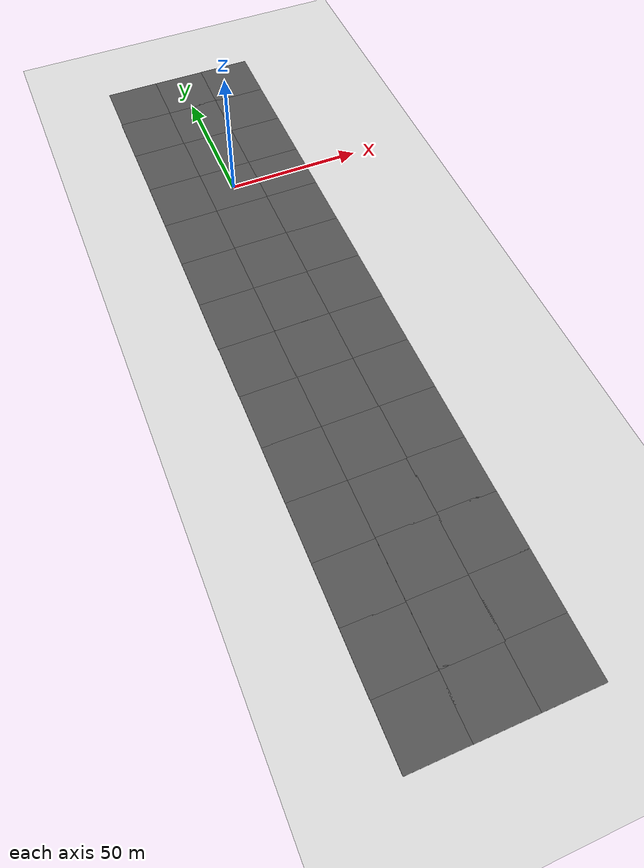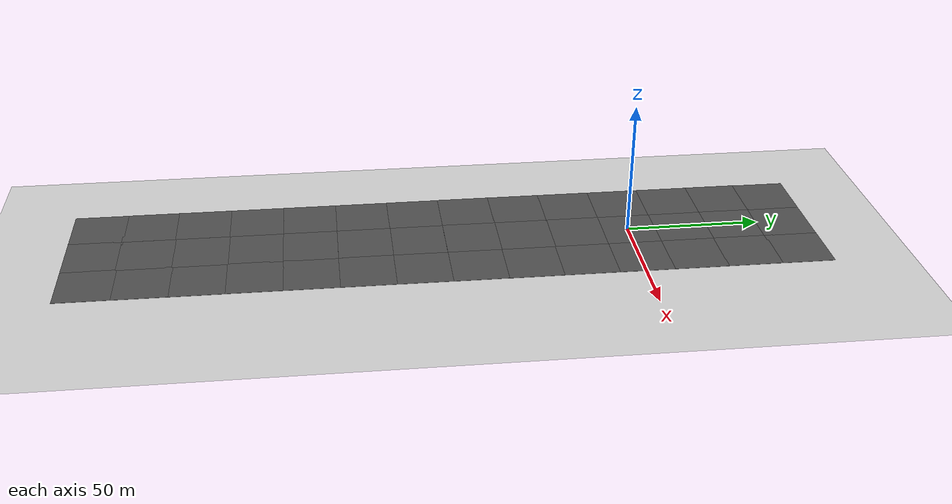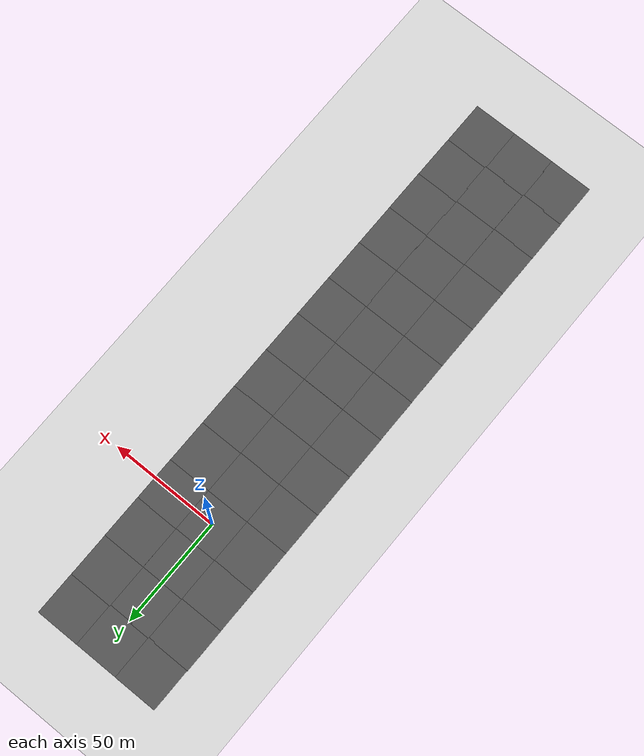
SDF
<sdf version="1.6">
 <world name="default">
  <model name="ground_plane">
   <static>1</static>
   <link name="link">
    <collision name="collision">
     <geometry><plane><normal>0 0 1</normal><size>100 100</size></plane></geometry>
     <surface><friction><ode><mu>100</mu><mu2>50</mu2></ode></friction></surface>
    </collision>
    <visual name="visual">
     <cast_shadows>0</cast_shadows>
     <geometry><plane><normal>0 0 1</normal><size>100 100</size></plane></geometry>
     <material>
      <script><uri>file://media/materials/scripts/gazebo.material</uri><name>Gazebo/Grey</name></script>
     </material>
    </visual>
    <velocity_decay><linear>0</linear><angular>0</angular></velocity_decay>
   </link>
  </model>
  <light name="sun" type="directional">
   <pose>0 0 10 0 -0 0</pose>
   <diffuse>0.8 0.8 0.8 1</diffuse>
   <specular>0.2 0.2 0.2 1</specular>
   <attenuation>
    <range>1000</range>
    <constant>0.9</constant>
    <linear>0.01</linear>
    <quadratic>0.001</quadratic>
   </attenuation>
   <direction>-0.5 0.1 -0.9</direction>
  </light>
  <physics name="default_physics" default="0" type="ode">
   <max_step_size>0.001</max_step_size>
   <real_time_factor>1</real_time_factor>
   <real_time_update_rate>1000</real_time_update_rate>
  </physics>
  <scene><ambient>0.4 0.4 0.4 1</ambient><background>0.7 0.7 0.7 1</background><shadows>1</shadows></scene>
  <spherical_coordinates>
   <surface_model>EARTH_WGS84</surface_model>
   <latitude_deg>0</latitude_deg>
   <longitude_deg>0</longitude_deg>
   <elevation>0</elevation>
   <heading_deg>0</heading_deg>
  </spherical_coordinates>
  <gravity>0 0 -9.8</gravity>
  <magnetic_field>6e-06 2.3e-05 -4.2e-05</magnetic_field>
  <atmosphere type="adiabatic"/>
  <model name="asphalt_plane">
   <static>1</static>
   <link name="link">
    <collision name="collision"><geometry><box><size>20 20 0.1</size></box></geometry></collision>
    <visual name="visual">
     <cast_shadows>0</cast_shadows>
     <geometry><box><size>20 20 0.1</size></box></geometry>
     <material>
      <script>
       <uri>model://asphalt_plane/materials/scripts</uri>
       <uri>model://asphalt_plane/materials/textures</uri>
       <name>vrc/asphalt</name>
      </script>
     </material>
    </visual>
   </link>
   <pose>-19.9414 0.595229 0 0 -0 0</pose>
  </model>
  <model name="asphalt_plane_0">
   <static>1</static>
   <link name="link">
    <collision name="collision"><geometry><box><size>20 20 0.1</size></box></geometry></collision>
    <visual name="visual">
     <cast_shadows>0</cast_shadows>
     <geometry><box><size>20 20 0.1</size></box></geometry>
     <material>
      <script>
       <uri>model://asphalt_plane/materials/scripts</uri>
       <uri>model://asphalt_plane/materials/textures</uri>
       <name>vrc/asphalt</name>
      </script>
     </material>
    </visual>
   </link>
   <pose>0.044898 0.59688 0 0 -0 0</pose>
  </model>
  <model name="asphalt_plane_1">
   <static>1</static>
   <link name="link">
    <collision name="collision"><geometry><box><size>20 20 0.1</size></box></geometry></collision>
    <visual name="visual">
     <cast_shadows>0</cast_shadows>
     <geometry><box><size>20 20 0.1</size></box></geometry>
     <material>
      <script>
       <uri>model://asphalt_plane/materials/scripts</uri>
       <uri>model://asphalt_plane/materials/textures</uri>
       <name>vrc/asphalt</name>
      </script>
     </material>
    </visual>
   </link>
   <pose>19.9871 0.624734 0 0 -0 0</pose>
  </model>
  <model name="asphalt_plane_2">
   <static>1</static>
   <link name="link">
    <collision name="collision"><geometry><box><size>20 20 0.1</size></box></geometry></collision>
    <visual name="visual">
     <cast_shadows>0</cast_shadows>
     <geometry><box><size>20 20 0.1</size></box></geometry>
     <material>
      <script>
       <uri>model://asphalt_plane/materials/scripts</uri>
       <uri>model://asphalt_plane/materials/textures</uri>
       <name>vrc/asphalt</name>
      </script>
     </material>
    </visual>
   </link>
   <pose>-19.9725 -19.3493 0 0 -0 0</pose>
  </model>
  <model name="asphalt_plane_3">
   <static>1</static>
   <link name="link">
    <collision name="collision"><geometry><box><size>20 20 0.1</size></box></geometry></collision>
    <visual name="visual">
     <cast_shadows>0</cast_shadows>
     <geometry><box><size>20 20 0.1</size></box></geometry>
     <material>
      <script>
       <uri>model://asphalt_plane/materials/scripts</uri>
       <uri>model://asphalt_plane/materials/textures</uri>
       <name>vrc/asphalt</name>
      </script>
     </material>
    </visual>
   </link>
   <pose>-0.00486 -19.3205 0 0 -0 0</pose>
  </model>
  <model name="asphalt_plane_4">
   <static>1</static>
   <link name="link">
    <collision name="collision"><geometry><box><size>20 20 0.1</size></box></geometry></collision>
    <visual name="visual">
     <cast_shadows>0</cast_shadows>
     <geometry><box><size>20 20 0.1</size></box></geometry>
     <material>
      <script>
       <uri>model://asphalt_plane/materials/scripts</uri>
       <uri>model://asphalt_plane/materials/textures</uri>
       <name>vrc/asphalt</name>
      </script>
     </material>
    </visual>
   </link>
   <pose>19.9606 -19.3626 0 0 -0 0</pose>
  </model>
  <model name="asphalt_plane_5">
   <static>1</static>
   <link name="link">
    <collision name="collision"><geometry><box><size>20 20 0.1</size></box></geometry></collision>
    <visual name="visual">
     <cast_shadows>0</cast_shadows>
     <geometry><box><size>20 20 0.1</size></box></geometry>
     <material>
      <script>
       <uri>model://asphalt_plane/materials/scripts</uri>
       <uri>model://asphalt_plane/materials/textures</uri>
       <name>vrc/asphalt</name>
      </script>
     </material>
    </visual>
   </link>
   <pose>-19.9651 -39.2146 0 0 -0 0</pose>
  </model>
  <model name="asphalt_plane_6">
   <static>1</static>
   <link name="link">
    <collision name="collision"><geometry><box><size>20 20 0.1</size></box></geometry></collision>
    <visual name="visual">
     <cast_shadows>0</cast_shadows>
     <geometry><box><size>20 20 0.1</size></box></geometry>
     <material>
      <script>
       <uri>model://asphalt_plane/materials/scripts</uri>
       <uri>model://asphalt_plane/materials/textures</uri>
       <name>vrc/asphalt</name>
      </script>
     </material>
    </visual>
   </link>
   <pose>0.005091 -39.0989 0 0 -0 0</pose>
  </model>
  <model name="asphalt_plane_7">
   <static>1</static>
   <link name="link">
    <collision name="collision"><geometry><box><size>20 20 0.1</size></box></geometry></collision>
    <visual name="visual">
     <cast_shadows>0</cast_shadows>
     <geometry><box><size>20 20 0.1</size></box></geometry>
     <material>
      <script>
       <uri>model://asphalt_plane/materials/scripts</uri>
       <uri>model://asphalt_plane/materials/textures</uri>
       <name>vrc/asphalt</name>
      </script>
     </material>
    </visual>
   </link>
   <pose>19.9791 -39.1626 0 0 -0 0</pose>
  </model>
  <model name="asphalt_plane_8">
   <static>1</static>
   <link name="link">
    <collision name="collision"><geometry><box><size>20 20 0.1</size></box></geometry></collision>
    <visual name="visual">
     <cast_shadows>0</cast_shadows>
     <geometry><box><size>20 20 0.1</size></box></geometry>
     <material>
      <script>
       <uri>model://asphalt_plane/materials/scripts</uri>
       <uri>model://asphalt_plane/materials/textures</uri>
       <name>vrc/asphalt</name>
      </script>
     </material>
    </visual>
   </link>
   <pose>-19.9828 -59.0541 0 0 -0 0</pose>
  </model>
  <model name="asphalt_plane_9">
   <static>1</static>
   <link name="link">
    <collision name="collision"><geometry><box><size>20 20 0.1</size></box></geometry></collision>
    <visual name="visual">
     <cast_shadows>0</cast_shadows>
     <geometry><box><size>20 20 0.1</size></box></geometry>
     <material>
      <script>
       <uri>model://asphalt_plane/materials/scripts</uri>
       <uri>model://asphalt_plane/materials/textures</uri>
       <name>vrc/asphalt</name>
      </script>
     </material>
    </visual>
   </link>
   <pose>-0.074363 -59.0223 0 0 -0 0</pose>
  </model>
  <model name="asphalt_plane_10">
   <static>1</static>
   <link name="link">
    <collision name="collision"><geometry><box><size>20 20 0.1</size></box></geometry></collision>
    <visual name="visual">
     <cast_shadows>0</cast_shadows>
     <geometry><box><size>20 20 0.1</size></box></geometry>
     <material>
      <script>
       <uri>model://asphalt_plane/materials/scripts</uri>
       <uri>model://asphalt_plane/materials/textures</uri>
       <name>vrc/asphalt</name>
      </script>
     </material>
    </visual>
   </link>
   <pose>19.9226 -58.9951 0 0 -0 0</pose>
  </model>
  <model name="asphalt_plane_11">
   <static>1</static>
   <link name="link">
    <collision name="collision"><geometry><box><size>20 20 0.1</size></box></geometry></collision>
    <visual name="visual">
     <cast_shadows>0</cast_shadows>
     <geometry><box><size>20 20 0.1</size></box></geometry>
     <material>
      <script>
       <uri>model://asphalt_plane/materials/scripts</uri>
       <uri>model://asphalt_plane/materials/textures</uri>
       <name>vrc/asphalt</name>
      </script>
     </material>
    </visual>
   </link>
   <pose>-19.8631 -79.0192 0 0 -0 0</pose>
  </model>
  <model name="asphalt_plane_12">
   <static>1</static>
   <link name="link">
    <collision name="collision"><geometry><box><size>20 20 0.1</size></box></geometry></collision>
    <visual name="visual">
     <cast_shadows>0</cast_shadows>
     <geometry><box><size>20 20 0.1</size></box></geometry>
     <material>
      <script>
       <uri>model://asphalt_plane/materials/scripts</uri>
       <uri>model://asphalt_plane/materials/textures</uri>
       <name>vrc/asphalt</name>
      </script>
     </material>
    </visual>
   </link>
   <pose>-0.061333 -79.0407 0 0 -0 0</pose>
  </model>
  <model name="asphalt_plane_13">
   <static>1</static>
   <link name="link">
    <collision name="collision"><geometry><box><size>20 20 0.1</size></box></geometry></collision>
    <visual name="visual">
     <cast_shadows>0</cast_shadows>
     <geometry><box><size>20 20 0.1</size></box></geometry>
     <material>
      <script>
       <uri>model://asphalt_plane/materials/scripts</uri>
       <uri>model://asphalt_plane/materials/textures</uri>
       <name>vrc/asphalt</name>
      </script>
     </material>
    </visual>
   </link>
   <pose>19.8707 -78.9415 0 0 -0 0</pose>
  </model>
  <model name="asphalt_plane_14">
   <static>1</static>
   <link name="link">
    <collision name="collision"><geometry><box><size>20 20 0.1</size></box></geometry></collision>
    <visual name="visual">
     <cast_shadows>0</cast_shadows>
     <geometry><box><size>20 20 0.1</size></box></geometry>
     <material>
      <script>
       <uri>model://asphalt_plane/materials/scripts</uri>
       <uri>model://asphalt_plane/materials/textures</uri>
       <name>vrc/asphalt</name>
      </script>
     </material>
    </visual>
   </link>
   <pose>-19.7767 -98.9719 0 0 -0 0</pose>
  </model>
  <model name="asphalt_plane_15">
   <static>1</static>
   <link name="link">
    <collision name="collision"><geometry><box><size>20 20 0.1</size></box></geometry></collision>
    <visual name="visual">
     <cast_shadows>0</cast_shadows>
     <geometry><box><size>20 20 0.1</size></box></geometry>
     <material>
      <script>
       <uri>model://asphalt_plane/materials/scripts</uri>
       <uri>model://asphalt_plane/materials/textures</uri>
       <name>vrc/asphalt</name>
      </script>
     </material>
    </visual>
   </link>
   <pose>0.138437 -98.8713 0 0 -0 0</pose>
  </model>
  <model name="asphalt_plane_16">
   <static>1</static>
   <link name="link">
    <collision name="collision"><geometry><box><size>20 20 0.1</size></box></geometry></collision>
    <visual name="visual">
     <cast_shadows>0</cast_shadows>
     <geometry><box><size>20 20 0.1</size></box></geometry>
     <material>
      <script>
       <uri>model://asphalt_plane/materials/scripts</uri>
       <uri>model://asphalt_plane/materials/textures</uri>
       <name>vrc/asphalt</name>
      </script>
     </material>
    </visual>
   </link>
   <pose>19.8454 -98.9079 0 0 -0 0</pose>
  </model>
  <model name="asphalt_plane_17">
   <static>1</static>
   <link name="link">
    <collision name="collision"><geometry><box><size>20 20 0.1</size></box></geometry></collision>
    <visual name="visual">
     <cast_shadows>0</cast_shadows>
     <geometry><box><size>20 20 0.1</size></box></geometry>
     <material>
      <script>
       <uri>model://asphalt_plane/materials/scripts</uri>
       <uri>model://asphalt_plane/materials/textures</uri>
       <name>vrc/asphalt</name>
      </script>
     </material>
    </visual>
   </link>
   <pose>-19.7656 -118.82 0 0 -0 0</pose>
  </model>
  <model name="asphalt_plane_18">
   <static>1</static>
   <link name="link">
    <collision name="collision"><geometry><box><size>20 20 0.1</size></box></geometry></collision>
    <visual name="visual">
     <cast_shadows>0</cast_shadows>
     <geometry><box><size>20 20 0.1</size></box></geometry>
     <material>
      <script>
       <uri>model://asphalt_plane/materials/scripts</uri>
       <uri>model://asphalt_plane/materials/textures</uri>
       <name>vrc/asphalt</name>
      </script>
     </material>
    </visual>
   </link>
   <pose>0.138067 -118.872 0 0 -0 0</pose>
  </model>
  <model name="asphalt_plane_19">
   <static>1</static>
   <link name="link">
    <collision name="collision"><geometry><box><size>20 20 0.1</size></box></geometry></collision>
    <visual name="visual">
     <cast_shadows>0</cast_shadows>
     <geometry><box><size>20 20 0.1</size></box></geometry>
     <material>
      <script>
       <uri>model://asphalt_plane/materials/scripts</uri>
       <uri>model://asphalt_plane/materials/textures</uri>
       <name>vrc/asphalt</name>
      </script>
     </material>
    </visual>
   </link>
   <pose>19.8312 -118.846 0 0 -0 0</pose>
  </model>
  <model name="asphalt_plane_20">
   <static>1</static>
   <link name="link">
    <collision name="collision"><geometry><box><size>20 20 0.1</size></box></geometry></collision>
    <visual name="visual">
     <cast_shadows>0</cast_shadows>
     <geometry><box><size>20 20 0.1</size></box></geometry>
     <material>
      <script>
       <uri>model://asphalt_plane/materials/scripts</uri>
       <uri>model://asphalt_plane/materials/textures</uri>
       <name>vrc/asphalt</name>
      </script>
     </material>
    </visual>
   </link>
   <pose>-19.7433 -138.732 0 0 -0 0</pose>
  </model>
  <model name="asphalt_plane_21">
   <static>1</static>
   <link name="link">
    <collision name="collision"><geometry><box><size>20 20 0.1</size></box></geometry></collision>
    <visual name="visual">
     <cast_shadows>0</cast_shadows>
     <geometry><box><size>20 20 0.1</size></box></geometry>
     <material>
      <script>
       <uri>model://asphalt_plane/materials/scripts</uri>
       <uri>model://asphalt_plane/materials/textures</uri>
       <name>vrc/asphalt</name>
      </script>
     </material>
    </visual>
   </link>
   <pose>0.239649 -138.856 0 0 -0 0</pose>
  </model>
  <model name="asphalt_plane_22">
   <static>1</static>
   <link name="link">
    <collision name="collision"><geometry><box><size>20 20 0.1</size></box></geometry></collision>
    <visual name="visual">
     <cast_shadows>0</cast_shadows>
     <geometry><box><size>20 20 0.1</size></box></geometry>
     <material>
      <script>
       <uri>model://asphalt_plane/materials/scripts</uri>
       <uri>model://asphalt_plane/materials/textures</uri>
       <name>vrc/asphalt</name>
      </script>
     </material>
    </visual>
   </link>
   <pose>19.8251 -138.728 0 0 -0 0</pose>
  </model>
  <model name="asphalt_plane_23">
   <static>1</static>
   <link name="link">
    <collision name="collision"><geometry><box><size>20 20 0.1</size></box></geometry></collision>
    <visual name="visual">
     <cast_shadows>0</cast_shadows>
     <geometry><box><size>20 20 0.1</size></box></geometry>
     <material>
      <script>
       <uri>model://asphalt_plane/materials/scripts</uri>
       <uri>model://asphalt_plane/materials/textures</uri>
       <name>vrc/asphalt</name>
      </script>
     </material>
    </visual>
   </link>
   <pose>-19.7436 -158.731 0 0 -0 0</pose>
  </model>
  <model name="asphalt_plane_24">
   <static>1</static>
   <link name="link">
    <collision name="collision"><geometry><box><size>20 20 0.1</size></box></geometry></collision>
    <visual name="visual">
     <cast_shadows>0</cast_shadows>
     <geometry><box><size>20 20 0.1</size></box></geometry>
     <material>
      <script>
       <uri>model://asphalt_plane/materials/scripts</uri>
       <uri>model://asphalt_plane/materials/textures</uri>
       <name>vrc/asphalt</name>
      </script>
     </material>
    </visual>
   </link>
   <pose>0.266329 -158.519 0 0 -0 0</pose>
  </model>
  <model name="asphalt_plane_25">
   <static>1</static>
   <link name="link">
    <collision name="collision"><geometry><box><size>20 20 0.1</size></box></geometry></collision>
    <visual name="visual">
     <cast_shadows>0</cast_shadows>
     <geometry><box><size>20 20 0.1</size></box></geometry>
     <material>
      <script>
       <uri>model://asphalt_plane/materials/scripts</uri>
       <uri>model://asphalt_plane/materials/textures</uri>
       <name>vrc/asphalt</name>
      </script>
     </material>
    </visual>
   </link>
   <pose>19.8651 -158.204 0 0 -0 0</pose>
  </model>
  <model name="asphalt_plane_26">
   <static>1</static>
   <link name="link">
    <collision name="collision"><geometry><box><size>20 20 0.1</size></box></geometry></collision>
    <visual name="visual">
     <cast_shadows>0</cast_shadows>
     <geometry><box><size>20 20 0.1</size></box></geometry>
     <material>
      <script>
       <uri>model://asphalt_plane/materials/scripts</uri>
       <uri>model://asphalt_plane/materials/textures</uri>
       <name>vrc/asphalt</name>
      </script>
     </material>
    </visual>
   </link>
   <pose>-19.7568 -178.445 0 0 -0 0</pose>
  </model>
  <model name="asphalt_plane_27">
   <static>1</static>
   <link name="link">
    <collision name="collision"><geometry><box><size>20 20 0.1</size></box></geometry></collision>
    <visual name="visual">
     <cast_shadows>0</cast_shadows>
     <geometry><box><size>20 20 0.1</size></box></geometry>
     <material>
      <script>
       <uri>model://asphalt_plane/materials/scripts</uri>
       <uri>model://asphalt_plane/materials/textures</uri>
       <name>vrc/asphalt</name>
      </script>
     </material>
    </visual>
   </link>
   <pose>0.255611 -178.406 0 0 -0 0</pose>
  </model>
  <model name="asphalt_plane_28">
   <static>1</static>
   <link name="link">
    <collision name="collision"><geometry><box><size>20 20 0.1</size></box></geometry></collision>
    <visual name="visual">
     <cast_shadows>0</cast_shadows>
     <geometry><box><size>20 20 0.1</size></box></geometry>
     <material>
      <script>
       <uri>model://asphalt_plane/materials/scripts</uri>
       <uri>model://asphalt_plane/materials/textures</uri>
       <name>vrc/asphalt</name>
      </script>
     </material>
    </visual>
   </link>
   <pose>19.8396 -177.999 0 0 -0 0</pose>
  </model>
  <model name="asphalt_plane_29">
   <static>1</static>
   <link name="link">
    <collision name="collision"><geometry><box><size>20 20 0.1</size></box></geometry></collision>
    <visual name="visual">
     <cast_shadows>0</cast_shadows>
     <geometry><box><size>20 20 0.1</size></box></geometry>
     <material>
      <script>
       <uri>model://asphalt_plane/materials/scripts</uri>
       <uri>model://asphalt_plane/materials/textures</uri>
       <name>vrc/asphalt</name>
      </script>
     </material>
    </visual>
   </link>
   <pose>19.7954 -197.833 0 0 -0 0</pose>
  </model>
  <model name="asphalt_plane_30">
   <static>1</static>
   <link name="link">
    <collision name="collision"><geometry><box><size>20 20 0.1</size></box></geometry></collision>
    <visual name="visual">
     <cast_shadows>0</cast_shadows>
     <geometry><box><size>20 20 0.1</size></box></geometry>
     <material>
      <script>
       <uri>model://asphalt_plane/materials/scripts</uri>
       <uri>model://asphalt_plane/materials/textures</uri>
       <name>vrc/asphalt</name>
      </script>
     </material>
    </visual>
   </link>
   <pose>-0.089574 -197.848 0 0 -0 0</pose>
  </model>
  <model name="asphalt_plane_31">
   <static>1</static>
   <link name="link">
    <collision name="collision"><geometry><box><size>20 20 0.1</size></box></geometry></collision>
    <visual name="visual">
     <cast_shadows>0</cast_shadows>
     <geometry><box><size>20 20 0.1</size></box></geometry>
     <material>
      <script>
       <uri>model://asphalt_plane/materials/scripts</uri>
       <uri>model://asphalt_plane/materials/textures</uri>
       <name>vrc/asphalt</name>
      </script>
     </material>
    </visual>
   </link>
   <pose>-19.6988 -197.816 0 0 -0 0</pose>
  </model>
  <model name="asphalt_plane_32">
   <static>1</static>
   <link name="link">
    <collision name="collision"><geometry><box><size>20 20 0.1</size></box></geometry></collision>
    <visual name="visual">
     <cast_shadows>0</cast_shadows>
     <geometry><box><size>20 20 0.1</size></box></geometry>
     <material>
      <script>
       <uri>model://asphalt_plane/materials/scripts</uri>
       <uri>model://asphalt_plane/materials/textures</uri>
       <name>vrc/asphalt</name>
      </script>
     </material>
    </visual>
   </link>
   <pose>-19.9255 20.431 0 0 -0 0</pose>
  </model>
  <model name="asphalt_plane_33">
   <static>1</static>
   <link name="link">
    <collision name="collision"><geometry><box><size>20 20 0.1</size></box></geometry></collision>
    <visual name="visual">
     <cast_shadows>0</cast_shadows>
     <geometry><box><size>20 20 0.1</size></box></geometry>
     <material>
      <script>
       <uri>model://asphalt_plane/materials/scripts</uri>
       <uri>model://asphalt_plane/materials/textures</uri>
       <name>vrc/asphalt</name>
      </script>
     </material>
    </visual>
   </link>
   <pose>-0.014638 20.4595 0 0 -0 0</pose>
  </model>
  <model name="asphalt_plane_34">
   <static>1</static>
   <link name="link">
    <collision name="collision"><geometry><box><size>20 20 0.1</size></box></geometry></collision>
    <visual name="visual">
     <cast_shadows>0</cast_shadows>
     <geometry><box><size>20 20 0.1</size></box></geometry>
     <material>
      <script>
       <uri>model://asphalt_plane/materials/scripts</uri>
       <uri>model://asphalt_plane/materials/textures</uri>
       <name>vrc/asphalt</name>
      </script>
     </material>
    </visual>
   </link>
   <pose>19.9877 20.4856 0 0 -0 0</pose>
  </model>
  <model name="asphalt_plane_35">
   <static>1</static>
   <link name="link">
    <collision name="collision"><geometry><box><size>20 20 0.1</size></box></geometry></collision>
    <visual name="visual">
     <cast_shadows>0</cast_shadows>
     <geometry><box><size>20 20 0.1</size></box></geometry>
     <material>
      <script>
       <uri>model://asphalt_plane/materials/scripts</uri>
       <uri>model://asphalt_plane/materials/textures</uri>
       <name>vrc/asphalt</name>
      </script>
     </material>
    </visual>
   </link>
   <pose>-19.9732 40.1698 0 0 -0 0</pose>
  </model>
  <model name="asphalt_plane_36">
   <static>1</static>
   <link name="link">
    <collision name="collision"><geometry><box><size>20 20 0.1</size></box></geometry></collision>
    <visual name="visual">
     <cast_shadows>0</cast_shadows>
     <geometry><box><size>20 20 0.1</size></box></geometry>
     <material>
      <script>
       <uri>model://asphalt_plane/materials/scripts</uri>
       <uri>model://asphalt_plane/materials/textures</uri>
       <name>vrc/asphalt</name>
      </script>
     </material>
    </visual>
   </link>
   <pose>-0.059765 40.2842 0 0 -0 0</pose>
  </model>
  <model name="asphalt_plane_37">
   <static>1</static>
   <link name="link">
    <collision name="collision"><geometry><box><size>20 20 0.1</size></box></geometry></collision>
    <visual name="visual">
     <cast_shadows>0</cast_shadows>
     <geometry><box><size>20 20 0.1</size></box></geometry>
     <material>
      <script>
       <uri>model://asphalt_plane/materials/scripts</uri>
       <uri>model://asphalt_plane/materials/textures</uri>
       <name>vrc/asphalt</name>
      </script>
     </material>
    </visual>
   </link>
   <pose>19.9361 40.303 0 0 -0 0</pose>
  </model>
  <model name="asphalt_plane_38">
   <static>1</static>
   <link name="link">
    <collision name="collision"><geometry><box><size>20 20 0.1</size></box></geometry></collision>
    <visual name="visual">
     <cast_shadows>0</cast_shadows>
     <geometry><box><size>20 20 0.1</size></box></geometry>
     <material>
      <script>
       <uri>model://asphalt_plane/materials/scripts</uri>
       <uri>model://asphalt_plane/materials/textures</uri>
       <name>vrc/asphalt</name>
      </script>
     </material>
    </visual>
   </link>
   <pose>-19.785 59.7539 0 0 -0 0</pose>
  </model>
  <model name="asphalt_plane_39">
   <static>1</static>
   <link name="link">
    <collision name="collision"><geometry><box><size>20 20 0.1</size></box></geometry></collision>
    <visual name="visual">
     <cast_shadows>0</cast_shadows>
     <geometry><box><size>20 20 0.1</size></box></geometry>
     <material>
      <script>
       <uri>model://asphalt_plane/materials/scripts</uri>
       <uri>model://asphalt_plane/materials/textures</uri>
       <name>vrc/asphalt</name>
      </script>
     </material>
    </visual>
   </link>
   <pose>0.126466 59.7107 0 0 -0 0</pose>
  </model>
  <model name="asphalt_plane_40">
   <static>1</static>
   <link name="link">
    <collision name="collision"><geometry><box><size>20 20 0.1</size></box></geometry></collision>
    <visual name="visual">
     <cast_shadows>0</cast_shadows>
     <geometry><box><size>20 20 0.1</size></box></geometry>
     <material>
      <script>
       <uri>model://asphalt_plane/materials/scripts</uri>
       <uri>model://asphalt_plane/materials/textures</uri>
       <name>vrc/asphalt</name>
      </script>
     </material>
    </visual>
   </link>
   <pose>19.9674 59.7497 0 0 -0 0</pose>
  </model>
 </world>
</sdf>
